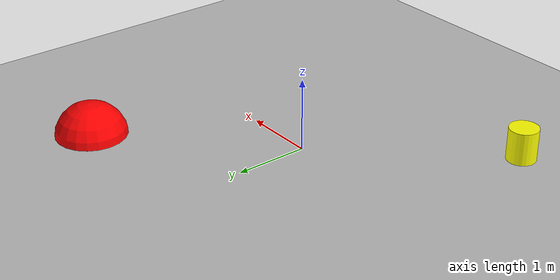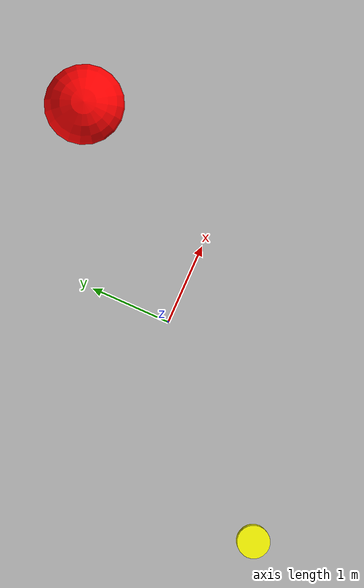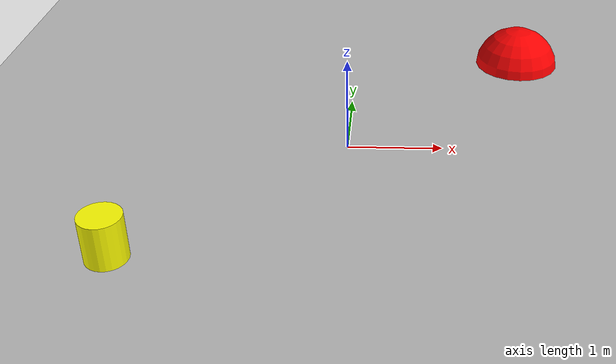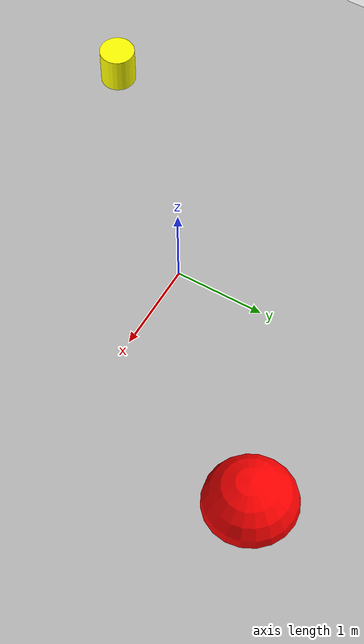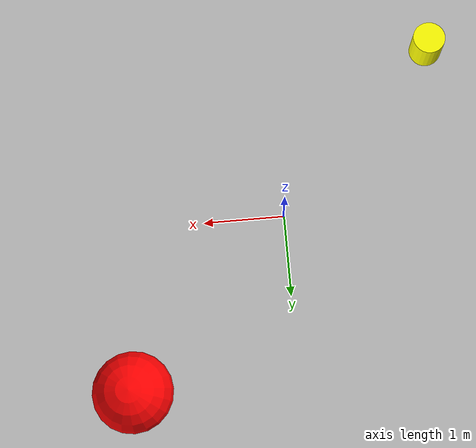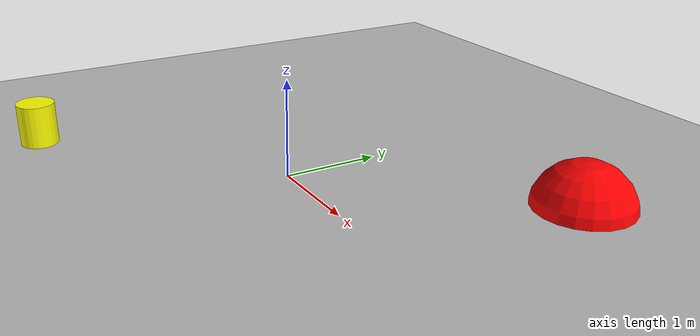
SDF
<?xml version="1.0" ?>
<sdf version="1.5">
  <world name="orchard">
    <!-- Include default models -->
    <include>
      <uri>model://sun</uri>
    </include>
    <include>
      <uri>model://ground_plane</uri>
    </include>

    <!-- Define a simple ground plane -->
    <model name="ground_plane">
      <pose>0 0 0 0 0 0</pose>
      <link name="link">
        <collision name="collision">
          <geometry>
            <box>
              <size>100 100 0.1</size>
            </box>
          </geometry>
        </collision>
        <visual name="visual">
          <geometry>
            <box>
              <size>100 100 0.1</size>
            </box>
          </geometry>
        </visual>
      </link>
    </model>

    <!-- Add fruit models -->
    <model name="apple">
      <pose>2 2 0 0 0 0</pose>
      <link name="link">
        <collision name="collision">
          <geometry>
            <sphere>
              <radius>0.5</radius>
            </sphere>
          </geometry>
        </collision>
        <visual name="visual">
          <geometry>
            <sphere>
              <radius>0.5</radius>
            </sphere>
          </geometry>
          <material>
            <ambient>1 0 0 1</ambient> <!-- Red apple -->
          </material>
        </visual>
      </link>
    </model>

    <model name="banana">
      <pose>-2 -2 0 0 0 0</pose>
      <link name="link">
        <collision name="collision">
          <geometry>
            <cylinder>
              <radius>0.2</radius>
              <length>1.0</length>
            </cylinder>
          </geometry>
        </collision>
        <visual name="visual">
          <geometry>
            <cylinder>
              <radius>0.2</radius>
              <length>1.0</length>
            </cylinder>
          </geometry>
          <material>
            <ambient>1 1 0 1</ambient> <!-- Yellow banana -->
          </material>
        </visual>
      </link>
    </model>

    <!-- Add more models as needed -->
  </world>
</sdf>
